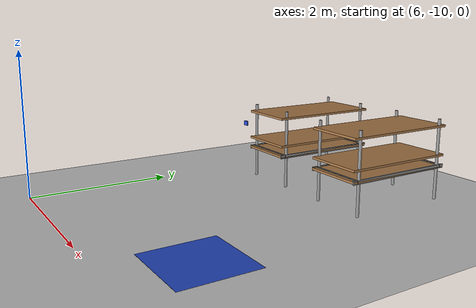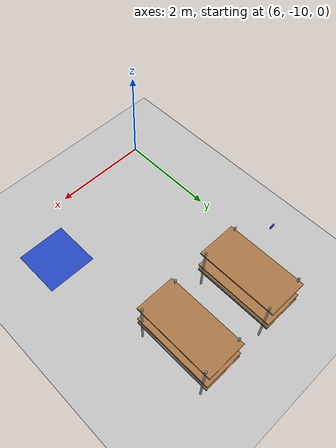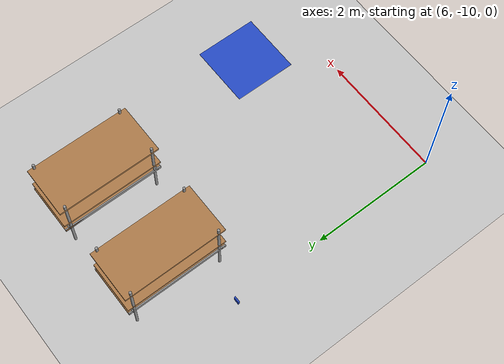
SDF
<sdf version="1.7">
 <world name="warehouse_world">
  <model name="ground_plane">
   <static>1</static>
   <link name="link">
    <collision name="collision">
     <geometry><plane><normal>0 0 1</normal><size>100 100</size></plane></geometry>
     <surface>
      <contact><collide_bitmask>65535</collide_bitmask></contact>
      <friction><ode><mu>100</mu><mu2>50</mu2></ode></friction>
     </surface>
    </collision>
    <visual name="visual">
     <cast_shadows>0</cast_shadows>
     <geometry><plane><normal>0 0 1</normal><size>100 100</size></plane></geometry>
     <material>
      <script><uri>file://media/materials/scripts/gazebo.material</uri><name>Gazebo/Grey</name></script>
     </material>
    </visual>
   </link>
  </model>
  <model name="destination_3">
   <link name="link">
    <inertial>
     <mass>0.1</mass>
     <inertia>
      <ixx>0.166667</ixx>
      <ixy>0</ixy>
      <ixz>0</ixz>
      <iyy>0.166667</iyy>
      <iyz>0</iyz>
      <izz>0.166667</izz>
     </inertia>
    </inertial>
    <visual name="visual">
     <geometry><box><size>1 1 0.001</size></box></geometry>
     <material>
      <script><name>Gazebo/Blue</name><uri>file://media/materials/scripts/gazebo.material</uri></script>
      <shader type="vertex"><normal_map>__default__</normal_map></shader>
     </material>
    </visual>
    <collision name="collision">
     <geometry><box><size>1 1 0</size></box></geometry>
     <surface>
      <friction>
       <ode><mu>0.998</mu><mu2>0.998</mu2><fdir1>0 0 0</fdir1><slip1>0</slip1><slip2>0</slip2></ode>
      </friction>
      <bounce><restitution_coefficient>0</restitution_coefficient><threshold>100000</threshold></bounce>
      <contact>
       <ode>
        <soft_cfm>0</soft_cfm>
        <soft_erp>0.2</soft_erp>
        <kp>100000</kp>
        <kd>1</kd>
        <max_vel>100</max_vel>
        <min_depth>0.001</min_depth>
       </ode>
      </contact>
     </surface>
    </collision>
   </link>
   <static>1</static>
   <pose>9 -9 0 0 -0 0</pose>
  </model>
  <model name="blue_2_0_left">
   <link name="link">
    <inertial>
     <mass>0.1</mass>
     <inertia><ixx>0.16667</ixx><ixy>0</ixy><ixz>0</ixz><iyy>0.16667</iyy><iyz>0</iyz><izz>0.16667</izz></inertia>
    </inertial>
    <visual name="visual">
     <geometry><box><size>0.09433 0.024 0.07</size></box></geometry>
     <material>
      <script><name>Gazebo/Blue</name><uri>file://media/materials/scripts/gazebo.material</uri></script>
      <shader type="vertex"><normal_map>__default__</normal_map></shader>
     </material>
    </visual>
    <collision name="collision">
     <max_contacts>50</max_contacts>
     <geometry><box><size>0.09433 0.024 0.07</size></box></geometry>
     <surface>
      <friction>
       <ode><mu>0.998</mu><mu2>0.998</mu2><fdir1>0 0 0</fdir1><slip1>0</slip1><slip2>0</slip2></ode>
      </friction>
      <bounce><restitution_coefficient>0</restitution_coefficient><threshold>100000</threshold></bounce>
      <contact>
       <ode>
        <soft_cfm>0</soft_cfm>
        <soft_erp>0.2</soft_erp>
        <kp>100000</kp>
        <kd>1</kd>
        <max_vel>100</max_vel>
        <min_depth>0.001</min_depth>
       </ode>
      </contact>
     </surface>
    </collision>
   </link>
   <static>0</static>
   <allow_auto_disable>0</allow_auto_disable>
   <pose>5.84 -6.4 0.648998 0 -0 0</pose>
  </model>
  <model name="pallet_set2_clone_1">
   <pose>7 -6 0 0 -0 0</pose>
   <frame name="warehouse_pallet::__model__" attached_to="warehouse_pallet::warehouse_pallet::link">
    <pose relative_to="__model__">0 0 0 0 -0 0</pose>
   </frame>
   <link name="warehouse_pallet::warehouse_pallet::link">
    <pose relative_to="warehouse_pallet::__model__">0 0 -0 0 -0 1.57</pose>
    <inertial>
     <inertia>
      <ixx>0.0267042</ixx>
      <ixy>0</ixy>
      <ixz>0</ixz>
      <iyy>0.0937875</iyy>
      <iyz>0</iyz>
      <izz>0.120417</izz>
     </inertia>
     <mass>0.1</mass>
    </inertial>
    <visual name="holding1_visual">
     <pose>0 0.39 0.45 0 -0 0</pose>
     <geometry><box><size>1.6 0.02 0.05</size></box></geometry>
     <material>
      <script><uri>file://media/materials/scripts/gazebo.material</uri><name>Gazebo/Grey</name></script>
      <shader type="pixel"><normal_map>__default__</normal_map></shader>
      <ambient>0.3 0.3 0.3 1</ambient>
      <diffuse>0.7 0.7 0.7 1</diffuse>
      <specular>0.01 0.01 0.01 1</specular>
      <emissive>0 0 0 1</emissive>
     </material>
    </visual>
    <visual name="front_left_leg">
     <pose>0.7 0.38 0.5 0 -0 0</pose>
     <geometry><cylinder><radius>0.02</radius><length>1.2</length></cylinder></geometry>
     <material>
      <script><uri>file://media/materials/scripts/gazebo.material</uri><name>Gazebo/Grey</name></script>
      <shader type="pixel"><normal_map>__default__</normal_map></shader>
      <ambient>0.3 0.3 0.3 1</ambient>
      <diffuse>0.7 0.7 0.7 1</diffuse>
      <specular>0.01 0.01 0.01 1</specular>
      <emissive>0 0 0 1</emissive>
     </material>
    </visual>
    <visual name="front_right_leg">
     <pose>0.7 -0.38 0.5 0 -0 0</pose>
     <geometry><cylinder><radius>0.02</radius><length>1.2</length></cylinder></geometry>
     <material>
      <script><uri>file://media/materials/scripts/gazebo.material</uri><name>Gazebo/Grey</name></script>
      <shader type="pixel"><normal_map>__default__</normal_map></shader>
      <ambient>0.3 0.3 0.3 1</ambient>
      <diffuse>0.7 0.7 0.7 1</diffuse>
      <specular>0.01 0.01 0.01 1</specular>
      <emissive>0 0 0 1</emissive>
     </material>
    </visual>
    <visual name="back_right_leg">
     <pose>-0.7 -0.38 0.5 0 -0 0</pose>
     <geometry><cylinder><radius>0.02</radius><length>1.2</length></cylinder></geometry>
     <material>
      <script><uri>file://media/materials/scripts/gazebo.material</uri><name>Gazebo/Grey</name></script>
      <shader type="pixel"><normal_map>__default__</normal_map></shader>
      <ambient>0.3 0.3 0.3 1</ambient>
      <diffuse>0.7 0.7 0.7 1</diffuse>
      <specular>0.01 0.01 0.01 1</specular>
      <emissive>0 0 0 1</emissive>
     </material>
    </visual>
    <visual name="back_left_leg">
     <pose>-0.7 0.38 0.5 0 -0 0</pose>
     <geometry><cylinder><radius>0.02</radius><length>1.2</length></cylinder></geometry>
     <material>
      <script><uri>file://media/materials/scripts/gazebo.material</uri><name>Gazebo/Grey</name></script>
      <shader type="pixel"><normal_map>__default__</normal_map></shader>
      <ambient>0.3 0.3 0.3 1</ambient>
      <diffuse>0.7 0.7 0.7 1</diffuse>
      <specular>0.01 0.01 0.01 1</specular>
      <emissive>0 0 0 1</emissive>
     </material>
    </visual>
    <visual name="visual1">
     <pose>0 0 0.45 0 -0 0</pose>
     <geometry><box><size>1.6 0.8 0.03</size></box></geometry>
     <material>
      <script><uri>file://media/materials/scripts/gazebo.material</uri><name>Gazebo/Wood</name></script>
      <shader type="pixel"><normal_map>__default__</normal_map></shader>
      <ambient>1 1 1 1</ambient>
      <diffuse>1 1 1 1</diffuse>
      <specular>0.2 0.2 0.2 1</specular>
      <emissive>0 0 0 1</emissive>
     </material>
    </visual>
    <visual name="holding2_visual">
     <pose>0 -0.39 0.45 0 -0 0</pose>
     <geometry><box><size>1.6 0.02 0.05</size></box></geometry>
     <material>
      <script><uri>file://media/materials/scripts/gazebo.material</uri><name>Gazebo/Grey</name></script>
      <shader type="pixel"><normal_map>__default__</normal_map></shader>
      <ambient>0.3 0.3 0.3 1</ambient>
      <diffuse>0.7 0.7 0.7 1</diffuse>
      <specular>0.01 0.01 0.01 1</specular>
      <emissive>0 0 0 1</emissive>
     </material>
    </visual>
    <visual name="holding3_visual">
     <pose>0.735 0 0.45 0 -0 1.57</pose>
     <geometry><box><size>0.8 0.02 0.05</size></box></geometry>
     <material>
      <script><uri>file://media/materials/scripts/gazebo.material</uri><name>Gazebo/Grey</name></script>
      <shader type="pixel"><normal_map>__default__</normal_map></shader>
      <ambient>0.3 0.3 0.3 1</ambient>
      <diffuse>0.7 0.7 0.7 1</diffuse>
      <specular>0.01 0.01 0.01 1</specular>
      <emissive>0 0 0 1</emissive>
     </material>
    </visual>
    <visual name="holding4_visual">
     <pose>-0.735 0 0.45 0 -0 1.57</pose>
     <geometry><box><size>0.8 0.02 0.05</size></box></geometry>
     <material>
      <script><uri>file://media/materials/scripts/gazebo.material</uri><name>Gazebo/Grey</name></script>
      <shader type="pixel"><normal_map>__default__</normal_map></shader>
      <ambient>0.3 0.3 0.3 1</ambient>
      <diffuse>0.7 0.7 0.7 1</diffuse>
      <specular>0.01 0.01 0.01 1</specular>
      <emissive>0 0 0 1</emissive>
     </material>
    </visual>
    <visual name="visual2">
     <pose>0 0 0.6 0 -0 0</pose>
     <geometry><box><size>1.6 0.8 0.03</size></box></geometry>
     <material>
      <script><uri>file://media/materials/scripts/gazebo.material</uri><name>Gazebo/Wood</name></script>
      <shader type="pixel"><normal_map>__default__</normal_map></shader>
      <ambient>1 1 1 1</ambient>
      <diffuse>1 1 1 1</diffuse>
      <specular>0.2 0.2 0.2 1</specular>
      <emissive>0 0 0 1</emissive>
     </material>
    </visual>
    <visual name="visual3">
     <pose>0 0 1 0 -0 0</pose>
     <geometry><box><size>1.6 0.8 0.03</size></box></geometry>
     <material>
      <script><uri>file://media/materials/scripts/gazebo.material</uri><name>Gazebo/Wood</name></script>
      <shader type="pixel"><normal_map>__default__</normal_map></shader>
      <ambient>1 1 1 1</ambient>
      <diffuse>1 1 1 1</diffuse>
      <specular>0.2 0.2 0.2 1</specular>
      <emissive>0 0 0 1</emissive>
     </material>
    </visual>
    <collision name="surface1">
     <pose>0 0 0.45 0 -0 0</pose>
     <geometry><box><size>1.6 0.8 0.03</size></box></geometry>
     <surface>
      <friction>
       <ode><mu>20</mu><mu2>20</mu2><fdir1>0 0 0</fdir1><slip1>0</slip1><slip2>0</slip2></ode>
       <torsional>
        <coefficient>1</coefficient>
        <patch_radius>0</patch_radius>
        <surface_radius>0</surface_radius>
        <use_patch_radius>1</use_patch_radius>
        <ode><slip>0</slip></ode>
       </torsional>
      </friction>
      <bounce><restitution_coefficient>0</restitution_coefficient><threshold>1e+06</threshold></bounce>
      <contact>
       <collide_without_contact>0</collide_without_contact>
       <collide_without_contact_bitmask>1</collide_without_contact_bitmask>
       <collide_bitmask>1</collide_bitmask>
       <ode>
        <soft_cfm>0</soft_cfm>
        <soft_erp>0.2</soft_erp>
        <kp>1e+13</kp>
        <kd>1</kd>
        <max_vel>0.01</max_vel>
        <min_depth>0</min_depth>
       </ode>
       <bullet>
        <split_impulse>1</split_impulse>
        <split_impulse_penetration_threshold>-0.01</split_impulse_penetration_threshold>
        <soft_cfm>0</soft_cfm>
        <soft_erp>0.2</soft_erp>
        <kp>1e+13</kp>
        <kd>1</kd>
       </bullet>
      </contact>
     </surface>
    </collision>
    <collision name="holding1_collision">
     <pose>0 0.39 0.45 0 -0 0</pose>
     <geometry><box><size>1.6 0.02 0.05</size></box></geometry>
     <surface>
      <friction>
       <ode><mu>1e+09</mu><mu2>1e+09</mu2><fdir1>0 0 0</fdir1><slip1>0</slip1><slip2>0</slip2></ode>
       <torsional>
        <coefficient>1</coefficient>
        <patch_radius>0</patch_radius>
        <surface_radius>0</surface_radius>
        <use_patch_radius>1</use_patch_radius>
        <ode><slip>0</slip></ode>
       </torsional>
      </friction>
      <bounce><restitution_coefficient>0</restitution_coefficient><threshold>1e+06</threshold></bounce>
      <contact>
       <collide_without_contact>0</collide_without_contact>
       <collide_without_contact_bitmask>1</collide_without_contact_bitmask>
       <collide_bitmask>1</collide_bitmask>
       <ode>
        <soft_cfm>0</soft_cfm>
        <soft_erp>0.2</soft_erp>
        <kp>1e+13</kp>
        <kd>1</kd>
        <max_vel>0.01</max_vel>
        <min_depth>0</min_depth>
       </ode>
       <bullet>
        <split_impulse>1</split_impulse>
        <split_impulse_penetration_threshold>-0.01</split_impulse_penetration_threshold>
        <soft_cfm>0</soft_cfm>
        <soft_erp>0.2</soft_erp>
        <kp>1e+13</kp>
        <kd>1</kd>
       </bullet>
      </contact>
     </surface>
    </collision>
    <collision name="holding2_collision">
     <pose>0 -0.39 0.45 0 -0 0</pose>
     <geometry><box><size>1.6 0.02 0.05</size></box></geometry>
     <surface>
      <friction>
       <ode><mu>1e+09</mu><mu2>1e+09</mu2><fdir1>0 0 0</fdir1><slip1>0</slip1><slip2>0</slip2></ode>
       <torsional>
        <coefficient>1</coefficient>
        <patch_radius>0</patch_radius>
        <surface_radius>0</surface_radius>
        <use_patch_radius>1</use_patch_radius>
        <ode><slip>0</slip></ode>
       </torsional>
      </friction>
      <bounce><restitution_coefficient>0</restitution_coefficient><threshold>1e+06</threshold></bounce>
      <contact>
       <collide_without_contact>0</collide_without_contact>
       <collide_without_contact_bitmask>1</collide_without_contact_bitmask>
       <collide_bitmask>1</collide_bitmask>
       <ode>
        <soft_cfm>0</soft_cfm>
        <soft_erp>0.2</soft_erp>
        <kp>1e+13</kp>
        <kd>1</kd>
        <max_vel>0.01</max_vel>
        <min_depth>0</min_depth>
       </ode>
       <bullet>
        <split_impulse>1</split_impulse>
        <split_impulse_penetration_threshold>-0.01</split_impulse_penetration_threshold>
        <soft_cfm>0</soft_cfm>
        <soft_erp>0.2</soft_erp>
        <kp>1e+13</kp>
        <kd>1</kd>
       </bullet>
      </contact>
     </surface>
    </collision>
    <collision name="holding3_collision">
     <pose>0.735 0 0.45 0 -0 1.57</pose>
     <geometry><box><size>0.8 0.02 0.05</size></box></geometry>
     <surface>
      <friction>
       <ode><mu>1e+09</mu><mu2>1e+09</mu2><fdir1>0 0 0</fdir1><slip1>0</slip1><slip2>0</slip2></ode>
       <torsional>
        <coefficient>1</coefficient>
        <patch_radius>0</patch_radius>
        <surface_radius>0</surface_radius>
        <use_patch_radius>1</use_patch_radius>
        <ode><slip>0</slip></ode>
       </torsional>
      </friction>
      <bounce><restitution_coefficient>0</restitution_coefficient><threshold>1e+06</threshold></bounce>
      <contact>
       <collide_without_contact>0</collide_without_contact>
       <collide_without_contact_bitmask>1</collide_without_contact_bitmask>
       <collide_bitmask>1</collide_bitmask>
       <ode>
        <soft_cfm>0</soft_cfm>
        <soft_erp>0.2</soft_erp>
        <kp>1e+13</kp>
        <kd>1</kd>
        <max_vel>0.01</max_vel>
        <min_depth>0</min_depth>
       </ode>
       <bullet>
        <split_impulse>1</split_impulse>
        <split_impulse_penetration_threshold>-0.01</split_impulse_penetration_threshold>
        <soft_cfm>0</soft_cfm>
        <soft_erp>0.2</soft_erp>
        <kp>1e+13</kp>
        <kd>1</kd>
       </bullet>
      </contact>
     </surface>
    </collision>
    <collision name="holding4_collision">
     <pose>-0.735 0 0.45 0 -0 1.57</pose>
     <geometry><box><size>0.8 0.02 0.05</size></box></geometry>
     <surface>
      <friction>
       <ode><mu>1e+09</mu><mu2>1e+09</mu2><fdir1>0 0 0</fdir1><slip1>0</slip1><slip2>0</slip2></ode>
       <torsional>
        <coefficient>1</coefficient>
        <patch_radius>0</patch_radius>
        <surface_radius>0</surface_radius>
        <use_patch_radius>1</use_patch_radius>
        <ode><slip>0</slip></ode>
       </torsional>
      </friction>
      <bounce><restitution_coefficient>0</restitution_coefficient><threshold>1e+06</threshold></bounce>
      <contact>
       <collide_without_contact>0</collide_without_contact>
       <collide_without_contact_bitmask>1</collide_without_contact_bitmask>
       <collide_bitmask>1</collide_bitmask>
       <ode>
        <soft_cfm>0</soft_cfm>
        <soft_erp>0.2</soft_erp>
        <kp>1e+13</kp>
        <kd>1</kd>
        <max_vel>0.01</max_vel>
        <min_depth>0</min_depth>
       </ode>
       <bullet>
        <split_impulse>1</split_impulse>
        <split_impulse_penetration_threshold>-0.01</split_impulse_penetration_threshold>
        <soft_cfm>0</soft_cfm>
        <soft_erp>0.2</soft_erp>
        <kp>1e+13</kp>
        <kd>1</kd>
       </bullet>
      </contact>
     </surface>
    </collision>
    <collision name="surface3">
     <pose>0 0 1 0 -0 0</pose>
     <geometry><box><size>1.6 0.8 0.03</size></box></geometry>
     <surface>
      <friction>
       <ode><mu>2.5</mu><mu2>2.5</mu2><fdir1>0 0 0</fdir1><slip1>0</slip1><slip2>0</slip2></ode>
       <torsional>
        <coefficient>1</coefficient>
        <patch_radius>0</patch_radius>
        <surface_radius>0</surface_radius>
        <use_patch_radius>1</use_patch_radius>
        <ode><slip>0</slip></ode>
       </torsional>
      </friction>
      <bounce><restitution_coefficient>0</restitution_coefficient><threshold>1e+06</threshold></bounce>
      <contact>
       <collide_without_contact>0</collide_without_contact>
       <collide_without_contact_bitmask>1</collide_without_contact_bitmask>
       <collide_bitmask>1</collide_bitmask>
       <ode>
        <soft_cfm>0</soft_cfm>
        <soft_erp>0.2</soft_erp>
        <kp>1e+13</kp>
        <kd>1</kd>
        <max_vel>0.01</max_vel>
        <min_depth>0</min_depth>
       </ode>
       <bullet>
        <split_impulse>1</split_impulse>
        <split_impulse_penetration_threshold>-0.01</split_impulse_penetration_threshold>
        <soft_cfm>0</soft_cfm>
        <soft_erp>0.2</soft_erp>
        <kp>1e+13</kp>
        <kd>1</kd>
       </bullet>
      </contact>
     </surface>
    </collision>
    <collision name="surface2">
     <pose>0 0 0.6 0 -0 0</pose>
     <geometry><box><size>1.6 0.8 0.03</size></box></geometry>
     <surface>
      <friction>
       <ode><mu>2.5</mu><mu2>2.5</mu2><fdir1>0 0 0</fdir1><slip1>0</slip1><slip2>0</slip2></ode>
       <torsional>
        <coefficient>1</coefficient>
        <patch_radius>0</patch_radius>
        <surface_radius>0</surface_radius>
        <use_patch_radius>1</use_patch_radius>
        <ode><slip>0</slip></ode>
       </torsional>
      </friction>
      <bounce><restitution_coefficient>0</restitution_coefficient><threshold>1e+06</threshold></bounce>
      <contact>
       <collide_without_contact>0</collide_without_contact>
       <collide_without_contact_bitmask>1</collide_without_contact_bitmask>
       <collide_bitmask>1</collide_bitmask>
       <ode>
        <soft_cfm>0</soft_cfm>
        <soft_erp>0.2</soft_erp>
        <kp>1e+13</kp>
        <kd>1</kd>
        <max_vel>0.01</max_vel>
        <min_depth>0</min_depth>
       </ode>
       <bullet>
        <split_impulse>1</split_impulse>
        <split_impulse_penetration_threshold>-0.01</split_impulse_penetration_threshold>
        <soft_cfm>0</soft_cfm>
        <soft_erp>0.2</soft_erp>
        <kp>1e+13</kp>
        <kd>1</kd>
       </bullet>
      </contact>
     </surface>
    </collision>
    <collision name="front_right_leg">
     <pose>0.7 -0.38 0.5 0 -0 0</pose>
     <geometry><cylinder><radius>0.02</radius><length>1</length></cylinder></geometry>
     <surface>
      <friction>
       <ode><mu>0.1</mu><mu2>0.1</mu2><fdir1>0 0 0</fdir1><slip1>0</slip1><slip2>0</slip2></ode>
       <torsional>
        <coefficient>1</coefficient>
        <patch_radius>0</patch_radius>
        <surface_radius>0</surface_radius>
        <use_patch_radius>1</use_patch_radius>
        <ode><slip>0</slip></ode>
       </torsional>
      </friction>
      <bounce><restitution_coefficient>0</restitution_coefficient><threshold>1e+06</threshold></bounce>
      <contact>
       <collide_without_contact>0</collide_without_contact>
       <collide_without_contact_bitmask>1</collide_without_contact_bitmask>
       <collide_bitmask>1</collide_bitmask>
       <ode>
        <soft_cfm>0</soft_cfm>
        <soft_erp>0.2</soft_erp>
        <kp>1e+13</kp>
        <kd>1</kd>
        <max_vel>0.01</max_vel>
        <min_depth>0</min_depth>
       </ode>
       <bullet>
        <split_impulse>1</split_impulse>
        <split_impulse_penetration_threshold>-0.01</split_impulse_penetration_threshold>
        <soft_cfm>0</soft_cfm>
        <soft_erp>0.2</soft_erp>
        <kp>1e+13</kp>
        <kd>1</kd>
       </bullet>
      </contact>
     </surface>
    </collision>
    <collision name="back_right_leg">
     <pose>-0.7 -0.38 0.5 0 -0 0</pose>
     <geometry><cylinder><radius>0.02</radius><length>1.2</length></cylinder></geometry>
     <surface>
      <friction>
       <ode><mu>0.1</mu><mu2>0.1</mu2><fdir1>0 0 0</fdir1><slip1>0</slip1><slip2>0</slip2></ode>
       <torsional>
        <coefficient>1</coefficient>
        <patch_radius>0</patch_radius>
        <surface_radius>0</surface_radius>
        <use_patch_radius>1</use_patch_radius>
        <ode><slip>0</slip></ode>
       </torsional>
      </friction>
      <bounce><restitution_coefficient>0</restitution_coefficient><threshold>1e+06</threshold></bounce>
      <contact>
       <collide_without_contact>0</collide_without_contact>
       <collide_without_contact_bitmask>1</collide_without_contact_bitmask>
       <collide_bitmask>1</collide_bitmask>
       <ode>
        <soft_cfm>0</soft_cfm>
        <soft_erp>0.2</soft_erp>
        <kp>1e+13</kp>
        <kd>1</kd>
        <max_vel>0.01</max_vel>
        <min_depth>0</min_depth>
       </ode>
       <bullet>
        <split_impulse>1</split_impulse>
        <split_impulse_penetration_threshold>-0.01</split_impulse_penetration_threshold>
        <soft_cfm>0</soft_cfm>
        <soft_erp>0.2</soft_erp>
        <kp>1e+13</kp>
        <kd>1</kd>
       </bullet>
      </contact>
     </surface>
    </collision>
    <collision name="front_left_leg">
     <pose>0.7 0.38 0.5 0 -0 0</pose>
     <geometry><cylinder><radius>0.02</radius><length>1.2</length></cylinder></geometry>
     <surface>
      <friction>
       <ode><mu>0.1</mu><mu2>0.1</mu2><fdir1>0 0 0</fdir1><slip1>0</slip1><slip2>0</slip2></ode>
       <torsional>
        <coefficient>1</coefficient>
        <patch_radius>0</patch_radius>
        <surface_radius>0</surface_radius>
        <use_patch_radius>1</use_patch_radius>
        <ode><slip>0</slip></ode>
       </torsional>
      </friction>
      <bounce><restitution_coefficient>0</restitution_coefficient><threshold>1e+06</threshold></bounce>
      <contact>
       <collide_without_contact>0</collide_without_contact>
       <collide_without_contact_bitmask>1</collide_without_contact_bitmask>
       <collide_bitmask>1</collide_bitmask>
       <ode>
        <soft_cfm>0</soft_cfm>
        <soft_erp>0.2</soft_erp>
        <kp>1e+13</kp>
        <kd>1</kd>
        <max_vel>0.01</max_vel>
        <min_depth>0</min_depth>
       </ode>
       <bullet>
        <split_impulse>1</split_impulse>
        <split_impulse_penetration_threshold>-0.01</split_impulse_penetration_threshold>
        <soft_cfm>0</soft_cfm>
        <soft_erp>0.2</soft_erp>
        <kp>1e+13</kp>
        <kd>1</kd>
       </bullet>
      </contact>
     </surface>
    </collision>
    <collision name="back_left_leg">
     <pose>-0.7 0.38 0.5 0 -0 0</pose>
     <geometry><cylinder><radius>0.02</radius><length>1.2</length></cylinder></geometry>
     <surface>
      <friction>
       <ode><mu>0.1</mu><mu2>0.1</mu2><fdir1>0 0 0</fdir1><slip1>0</slip1><slip2>0</slip2></ode>
       <torsional>
        <coefficient>1</coefficient>
        <patch_radius>0</patch_radius>
        <surface_radius>0</surface_radius>
        <use_patch_radius>1</use_patch_radius>
        <ode><slip>0</slip></ode>
       </torsional>
      </friction>
      <bounce><restitution_coefficient>0</restitution_coefficient><threshold>1e+06</threshold></bounce>
      <contact>
       <collide_without_contact>0</collide_without_contact>
       <collide_without_contact_bitmask>1</collide_without_contact_bitmask>
       <collide_bitmask>1</collide_bitmask>
       <ode>
        <soft_cfm>0</soft_cfm>
        <soft_erp>0.2</soft_erp>
        <kp>1e+13</kp>
        <kd>1</kd>
        <max_vel>0.01</max_vel>
        <min_depth>0</min_depth>
       </ode>
       <bullet>
        <split_impulse>1</split_impulse>
        <split_impulse_penetration_threshold>-0.01</split_impulse_penetration_threshold>
        <soft_cfm>0</soft_cfm>
        <soft_erp>0.2</soft_erp>
        <kp>1e+13</kp>
        <kd>1</kd>
       </bullet>
      </contact>
     </surface>
    </collision>
   </link>
   <static>1</static>
  </model>
  <model name="pallet_set2_clone_2">
   <pose>8.5 -6 0 0 -0 0</pose>
   <frame name="warehouse_pallet::__model__" attached_to="warehouse_pallet::warehouse_pallet::link">
    <pose relative_to="__model__">0 0 0 0 -0 0</pose>
   </frame>
   <link name="warehouse_pallet::warehouse_pallet::link">
    <pose relative_to="warehouse_pallet::__model__">0 0 -0 0 -0 1.57</pose>
    <inertial>
     <inertia>
      <ixx>0.0267042</ixx>
      <ixy>0</ixy>
      <ixz>0</ixz>
      <iyy>0.0937875</iyy>
      <iyz>0</iyz>
      <izz>0.120417</izz>
     </inertia>
     <mass>0.1</mass>
    </inertial>
    <visual name="holding1_visual">
     <pose>0 0.39 0.45 0 -0 0</pose>
     <geometry><box><size>1.6 0.02 0.05</size></box></geometry>
     <material>
      <script><uri>file://media/materials/scripts/gazebo.material</uri><name>Gazebo/Grey</name></script>
      <shader type="pixel"><normal_map>__default__</normal_map></shader>
      <ambient>0.3 0.3 0.3 1</ambient>
      <diffuse>0.7 0.7 0.7 1</diffuse>
      <specular>0.01 0.01 0.01 1</specular>
      <emissive>0 0 0 1</emissive>
     </material>
    </visual>
    <visual name="front_left_leg">
     <pose>0.7 0.38 0.5 0 -0 0</pose>
     <geometry><cylinder><radius>0.02</radius><length>1.2</length></cylinder></geometry>
     <material>
      <script><uri>file://media/materials/scripts/gazebo.material</uri><name>Gazebo/Grey</name></script>
      <shader type="pixel"><normal_map>__default__</normal_map></shader>
      <ambient>0.3 0.3 0.3 1</ambient>
      <diffuse>0.7 0.7 0.7 1</diffuse>
      <specular>0.01 0.01 0.01 1</specular>
      <emissive>0 0 0 1</emissive>
     </material>
    </visual>
    <visual name="front_right_leg">
     <pose>0.7 -0.38 0.5 0 -0 0</pose>
     <geometry><cylinder><radius>0.02</radius><length>1.2</length></cylinder></geometry>
     <material>
      <script><uri>file://media/materials/scripts/gazebo.material</uri><name>Gazebo/Grey</name></script>
      <shader type="pixel"><normal_map>__default__</normal_map></shader>
      <ambient>0.3 0.3 0.3 1</ambient>
      <diffuse>0.7 0.7 0.7 1</diffuse>
      <specular>0.01 0.01 0.01 1</specular>
      <emissive>0 0 0 1</emissive>
     </material>
    </visual>
    <visual name="back_right_leg">
     <pose>-0.7 -0.38 0.5 0 -0 0</pose>
     <geometry><cylinder><radius>0.02</radius><length>1.2</length></cylinder></geometry>
     <material>
      <script><uri>file://media/materials/scripts/gazebo.material</uri><name>Gazebo/Grey</name></script>
      <shader type="pixel"><normal_map>__default__</normal_map></shader>
      <ambient>0.3 0.3 0.3 1</ambient>
      <diffuse>0.7 0.7 0.7 1</diffuse>
      <specular>0.01 0.01 0.01 1</specular>
      <emissive>0 0 0 1</emissive>
     </material>
    </visual>
    <visual name="back_left_leg">
     <pose>-0.7 0.38 0.5 0 -0 0</pose>
     <geometry><cylinder><radius>0.02</radius><length>1.2</length></cylinder></geometry>
     <material>
      <script><uri>file://media/materials/scripts/gazebo.material</uri><name>Gazebo/Grey</name></script>
      <shader type="pixel"><normal_map>__default__</normal_map></shader>
      <ambient>0.3 0.3 0.3 1</ambient>
      <diffuse>0.7 0.7 0.7 1</diffuse>
      <specular>0.01 0.01 0.01 1</specular>
      <emissive>0 0 0 1</emissive>
     </material>
    </visual>
    <visual name="visual1">
     <pose>0 0 0.45 0 -0 0</pose>
     <geometry><box><size>1.6 0.8 0.03</size></box></geometry>
     <material>
      <script><uri>file://media/materials/scripts/gazebo.material</uri><name>Gazebo/Wood</name></script>
      <shader type="pixel"><normal_map>__default__</normal_map></shader>
      <ambient>1 1 1 1</ambient>
      <diffuse>1 1 1 1</diffuse>
      <specular>0.2 0.2 0.2 1</specular>
      <emissive>0 0 0 1</emissive>
     </material>
    </visual>
    <visual name="holding2_visual">
     <pose>0 -0.39 0.45 0 -0 0</pose>
     <geometry><box><size>1.6 0.02 0.05</size></box></geometry>
     <material>
      <script><uri>file://media/materials/scripts/gazebo.material</uri><name>Gazebo/Grey</name></script>
      <shader type="pixel"><normal_map>__default__</normal_map></shader>
      <ambient>0.3 0.3 0.3 1</ambient>
      <diffuse>0.7 0.7 0.7 1</diffuse>
      <specular>0.01 0.01 0.01 1</specular>
      <emissive>0 0 0 1</emissive>
     </material>
    </visual>
    <visual name="holding3_visual">
     <pose>0.735 0 0.45 0 -0 1.57</pose>
     <geometry><box><size>0.8 0.02 0.05</size></box></geometry>
     <material>
      <script><uri>file://media/materials/scripts/gazebo.material</uri><name>Gazebo/Grey</name></script>
      <shader type="pixel"><normal_map>__default__</normal_map></shader>
      <ambient>0.3 0.3 0.3 1</ambient>
      <diffuse>0.7 0.7 0.7 1</diffuse>
      <specular>0.01 0.01 0.01 1</specular>
      <emissive>0 0 0 1</emissive>
     </material>
    </visual>
    <visual name="holding4_visual">
     <pose>-0.735 0 0.45 0 -0 1.57</pose>
     <geometry><box><size>0.8 0.02 0.05</size></box></geometry>
     <material>
      <script><uri>file://media/materials/scripts/gazebo.material</uri><name>Gazebo/Grey</name></script>
      <shader type="pixel"><normal_map>__default__</normal_map></shader>
      <ambient>0.3 0.3 0.3 1</ambient>
      <diffuse>0.7 0.7 0.7 1</diffuse>
      <specular>0.01 0.01 0.01 1</specular>
      <emissive>0 0 0 1</emissive>
     </material>
    </visual>
    <visual name="visual2">
     <pose>0 0 0.6 0 -0 0</pose>
     <geometry><box><size>1.6 0.8 0.03</size></box></geometry>
     <material>
      <script><uri>file://media/materials/scripts/gazebo.material</uri><name>Gazebo/Wood</name></script>
      <shader type="pixel"><normal_map>__default__</normal_map></shader>
      <ambient>1 1 1 1</ambient>
      <diffuse>1 1 1 1</diffuse>
      <specular>0.2 0.2 0.2 1</specular>
      <emissive>0 0 0 1</emissive>
     </material>
    </visual>
    <visual name="visual3">
     <pose>0 0 1 0 -0 0</pose>
     <geometry><box><size>1.6 0.8 0.03</size></box></geometry>
     <material>
      <script><uri>file://media/materials/scripts/gazebo.material</uri><name>Gazebo/Wood</name></script>
      <shader type="pixel"><normal_map>__default__</normal_map></shader>
      <ambient>1 1 1 1</ambient>
      <diffuse>1 1 1 1</diffuse>
      <specular>0.2 0.2 0.2 1</specular>
      <emissive>0 0 0 1</emissive>
     </material>
    </visual>
    <collision name="surface1">
     <pose>0 0 0.45 0 -0 0</pose>
     <geometry><box><size>1.6 0.8 0.03</size></box></geometry>
     <surface>
      <friction>
       <ode><mu>20</mu><mu2>20</mu2><fdir1>0 0 0</fdir1><slip1>0</slip1><slip2>0</slip2></ode>
       <torsional>
        <coefficient>1</coefficient>
        <patch_radius>0</patch_radius>
        <surface_radius>0</surface_radius>
        <use_patch_radius>1</use_patch_radius>
        <ode><slip>0</slip></ode>
       </torsional>
      </friction>
      <bounce><restitution_coefficient>0</restitution_coefficient><threshold>1e+06</threshold></bounce>
      <contact>
       <collide_without_contact>0</collide_without_contact>
       <collide_without_contact_bitmask>1</collide_without_contact_bitmask>
       <collide_bitmask>1</collide_bitmask>
       <ode>
        <soft_cfm>0</soft_cfm>
        <soft_erp>0.2</soft_erp>
        <kp>1e+13</kp>
        <kd>1</kd>
        <max_vel>0.01</max_vel>
        <min_depth>0</min_depth>
       </ode>
       <bullet>
        <split_impulse>1</split_impulse>
        <split_impulse_penetration_threshold>-0.01</split_impulse_penetration_threshold>
        <soft_cfm>0</soft_cfm>
        <soft_erp>0.2</soft_erp>
        <kp>1e+13</kp>
        <kd>1</kd>
       </bullet>
      </contact>
     </surface>
    </collision>
    <collision name="holding1_collision">
     <pose>0 0.39 0.45 0 -0 0</pose>
     <geometry><box><size>1.6 0.02 0.05</size></box></geometry>
     <surface>
      <friction>
       <ode><mu>1e+09</mu><mu2>1e+09</mu2><fdir1>0 0 0</fdir1><slip1>0</slip1><slip2>0</slip2></ode>
       <torsional>
        <coefficient>1</coefficient>
        <patch_radius>0</patch_radius>
        <surface_radius>0</surface_radius>
        <use_patch_radius>1</use_patch_radius>
        <ode><slip>0</slip></ode>
       </torsional>
      </friction>
      <bounce><restitution_coefficient>0</restitution_coefficient><threshold>1e+06</threshold></bounce>
      <contact>
       <collide_without_contact>0</collide_without_contact>
       <collide_without_contact_bitmask>1</collide_without_contact_bitmask>
       <collide_bitmask>1</collide_bitmask>
       <ode>
        <soft_cfm>0</soft_cfm>
        <soft_erp>0.2</soft_erp>
        <kp>1e+13</kp>
        <kd>1</kd>
        <max_vel>0.01</max_vel>
        <min_depth>0</min_depth>
       </ode>
       <bullet>
        <split_impulse>1</split_impulse>
        <split_impulse_penetration_threshold>-0.01</split_impulse_penetration_threshold>
        <soft_cfm>0</soft_cfm>
        <soft_erp>0.2</soft_erp>
        <kp>1e+13</kp>
        <kd>1</kd>
       </bullet>
      </contact>
     </surface>
    </collision>
    <collision name="holding2_collision">
     <pose>0 -0.39 0.45 0 -0 0</pose>
     <geometry><box><size>1.6 0.02 0.05</size></box></geometry>
     <surface>
      <friction>
       <ode><mu>1e+09</mu><mu2>1e+09</mu2><fdir1>0 0 0</fdir1><slip1>0</slip1><slip2>0</slip2></ode>
       <torsional>
        <coefficient>1</coefficient>
        <patch_radius>0</patch_radius>
        <surface_radius>0</surface_radius>
        <use_patch_radius>1</use_patch_radius>
        <ode><slip>0</slip></ode>
       </torsional>
      </friction>
      <bounce><restitution_coefficient>0</restitution_coefficient><threshold>1e+06</threshold></bounce>
      <contact>
       <collide_without_contact>0</collide_without_contact>
       <collide_without_contact_bitmask>1</collide_without_contact_bitmask>
       <collide_bitmask>1</collide_bitmask>
       <ode>
        <soft_cfm>0</soft_cfm>
        <soft_erp>0.2</soft_erp>
        <kp>1e+13</kp>
        <kd>1</kd>
        <max_vel>0.01</max_vel>
        <min_depth>0</min_depth>
       </ode>
       <bullet>
        <split_impulse>1</split_impulse>
        <split_impulse_penetration_threshold>-0.01</split_impulse_penetration_threshold>
        <soft_cfm>0</soft_cfm>
        <soft_erp>0.2</soft_erp>
        <kp>1e+13</kp>
        <kd>1</kd>
       </bullet>
      </contact>
     </surface>
    </collision>
    <collision name="holding3_collision">
     <pose>0.735 0 0.45 0 -0 1.57</pose>
     <geometry><box><size>0.8 0.02 0.05</size></box></geometry>
     <surface>
      <friction>
       <ode><mu>1e+09</mu><mu2>1e+09</mu2><fdir1>0 0 0</fdir1><slip1>0</slip1><slip2>0</slip2></ode>
       <torsional>
        <coefficient>1</coefficient>
        <patch_radius>0</patch_radius>
        <surface_radius>0</surface_radius>
        <use_patch_radius>1</use_patch_radius>
        <ode><slip>0</slip></ode>
       </torsional>
      </friction>
      <bounce><restitution_coefficient>0</restitution_coefficient><threshold>1e+06</threshold></bounce>
      <contact>
       <collide_without_contact>0</collide_without_contact>
       <collide_without_contact_bitmask>1</collide_without_contact_bitmask>
       <collide_bitmask>1</collide_bitmask>
       <ode>
        <soft_cfm>0</soft_cfm>
        <soft_erp>0.2</soft_erp>
        <kp>1e+13</kp>
        <kd>1</kd>
        <max_vel>0.01</max_vel>
        <min_depth>0</min_depth>
       </ode>
       <bullet>
        <split_impulse>1</split_impulse>
        <split_impulse_penetration_threshold>-0.01</split_impulse_penetration_threshold>
        <soft_cfm>0</soft_cfm>
        <soft_erp>0.2</soft_erp>
        <kp>1e+13</kp>
        <kd>1</kd>
       </bullet>
      </contact>
     </surface>
    </collision>
    <collision name="holding4_collision">
     <pose>-0.735 0 0.45 0 -0 1.57</pose>
     <geometry><box><size>0.8 0.02 0.05</size></box></geometry>
     <surface>
      <friction>
       <ode><mu>1e+09</mu><mu2>1e+09</mu2><fdir1>0 0 0</fdir1><slip1>0</slip1><slip2>0</slip2></ode>
       <torsional>
        <coefficient>1</coefficient>
        <patch_radius>0</patch_radius>
        <surface_radius>0</surface_radius>
        <use_patch_radius>1</use_patch_radius>
        <ode><slip>0</slip></ode>
       </torsional>
      </friction>
      <bounce><restitution_coefficient>0</restitution_coefficient><threshold>1e+06</threshold></bounce>
      <contact>
       <collide_without_contact>0</collide_without_contact>
       <collide_without_contact_bitmask>1</collide_without_contact_bitmask>
       <collide_bitmask>1</collide_bitmask>
       <ode>
        <soft_cfm>0</soft_cfm>
        <soft_erp>0.2</soft_erp>
        <kp>1e+13</kp>
        <kd>1</kd>
        <max_vel>0.01</max_vel>
        <min_depth>0</min_depth>
       </ode>
       <bullet>
        <split_impulse>1</split_impulse>
        <split_impulse_penetration_threshold>-0.01</split_impulse_penetration_threshold>
        <soft_cfm>0</soft_cfm>
        <soft_erp>0.2</soft_erp>
        <kp>1e+13</kp>
        <kd>1</kd>
       </bullet>
      </contact>
     </surface>
    </collision>
    <collision name="surface3">
     <pose>0 0 1 0 -0 0</pose>
     <geometry><box><size>1.6 0.8 0.03</size></box></geometry>
     <surface>
      <friction>
       <ode><mu>2.5</mu><mu2>2.5</mu2><fdir1>0 0 0</fdir1><slip1>0</slip1><slip2>0</slip2></ode>
       <torsional>
        <coefficient>1</coefficient>
        <patch_radius>0</patch_radius>
        <surface_radius>0</surface_radius>
        <use_patch_radius>1</use_patch_radius>
        <ode><slip>0</slip></ode>
       </torsional>
      </friction>
      <bounce><restitution_coefficient>0</restitution_coefficient><threshold>1e+06</threshold></bounce>
      <contact>
       <collide_without_contact>0</collide_without_contact>
       <collide_without_contact_bitmask>1</collide_without_contact_bitmask>
       <collide_bitmask>1</collide_bitmask>
       <ode>
        <soft_cfm>0</soft_cfm>
        <soft_erp>0.2</soft_erp>
        <kp>1e+13</kp>
        <kd>1</kd>
        <max_vel>0.01</max_vel>
        <min_depth>0</min_depth>
       </ode>
       <bullet>
        <split_impulse>1</split_impulse>
        <split_impulse_penetration_threshold>-0.01</split_impulse_penetration_threshold>
        <soft_cfm>0</soft_cfm>
        <soft_erp>0.2</soft_erp>
        <kp>1e+13</kp>
        <kd>1</kd>
       </bullet>
      </contact>
     </surface>
    </collision>
    <collision name="surface2">
     <pose>0 0 0.6 0 -0 0</pose>
     <geometry><box><size>1.6 0.8 0.03</size></box></geometry>
     <surface>
      <friction>
       <ode><mu>2.5</mu><mu2>2.5</mu2><fdir1>0 0 0</fdir1><slip1>0</slip1><slip2>0</slip2></ode>
       <torsional>
        <coefficient>1</coefficient>
        <patch_radius>0</patch_radius>
        <surface_radius>0</surface_radius>
        <use_patch_radius>1</use_patch_radius>
        <ode><slip>0</slip></ode>
       </torsional>
      </friction>
      <bounce><restitution_coefficient>0</restitution_coefficient><threshold>1e+06</threshold></bounce>
      <contact>
       <collide_without_contact>0</collide_without_contact>
       <collide_without_contact_bitmask>1</collide_without_contact_bitmask>
       <collide_bitmask>1</collide_bitmask>
       <ode>
        <soft_cfm>0</soft_cfm>
        <soft_erp>0.2</soft_erp>
        <kp>1e+13</kp>
        <kd>1</kd>
        <max_vel>0.01</max_vel>
        <min_depth>0</min_depth>
       </ode>
       <bullet>
        <split_impulse>1</split_impulse>
        <split_impulse_penetration_threshold>-0.01</split_impulse_penetration_threshold>
        <soft_cfm>0</soft_cfm>
        <soft_erp>0.2</soft_erp>
        <kp>1e+13</kp>
        <kd>1</kd>
       </bullet>
      </contact>
     </surface>
    </collision>
    <collision name="front_right_leg">
     <pose>0.7 -0.38 0.5 0 -0 0</pose>
     <geometry><cylinder><radius>0.02</radius><length>1</length></cylinder></geometry>
     <surface>
      <friction>
       <ode><mu>0.1</mu><mu2>0.1</mu2><fdir1>0 0 0</fdir1><slip1>0</slip1><slip2>0</slip2></ode>
       <torsional>
        <coefficient>1</coefficient>
        <patch_radius>0</patch_radius>
        <surface_radius>0</surface_radius>
        <use_patch_radius>1</use_patch_radius>
        <ode><slip>0</slip></ode>
       </torsional>
      </friction>
      <bounce><restitution_coefficient>0</restitution_coefficient><threshold>1e+06</threshold></bounce>
      <contact>
       <collide_without_contact>0</collide_without_contact>
       <collide_without_contact_bitmask>1</collide_without_contact_bitmask>
       <collide_bitmask>1</collide_bitmask>
       <ode>
        <soft_cfm>0</soft_cfm>
        <soft_erp>0.2</soft_erp>
        <kp>1e+13</kp>
        <kd>1</kd>
        <max_vel>0.01</max_vel>
        <min_depth>0</min_depth>
       </ode>
       <bullet>
        <split_impulse>1</split_impulse>
        <split_impulse_penetration_threshold>-0.01</split_impulse_penetration_threshold>
        <soft_cfm>0</soft_cfm>
        <soft_erp>0.2</soft_erp>
        <kp>1e+13</kp>
        <kd>1</kd>
       </bullet>
      </contact>
     </surface>
    </collision>
    <collision name="back_right_leg">
     <pose>-0.7 -0.38 0.5 0 -0 0</pose>
     <geometry><cylinder><radius>0.02</radius><length>1.2</length></cylinder></geometry>
     <surface>
      <friction>
       <ode><mu>0.1</mu><mu2>0.1</mu2><fdir1>0 0 0</fdir1><slip1>0</slip1><slip2>0</slip2></ode>
       <torsional>
        <coefficient>1</coefficient>
        <patch_radius>0</patch_radius>
        <surface_radius>0</surface_radius>
        <use_patch_radius>1</use_patch_radius>
        <ode><slip>0</slip></ode>
       </torsional>
      </friction>
      <bounce><restitution_coefficient>0</restitution_coefficient><threshold>1e+06</threshold></bounce>
      <contact>
       <collide_without_contact>0</collide_without_contact>
       <collide_without_contact_bitmask>1</collide_without_contact_bitmask>
       <collide_bitmask>1</collide_bitmask>
       <ode>
        <soft_cfm>0</soft_cfm>
        <soft_erp>0.2</soft_erp>
        <kp>1e+13</kp>
        <kd>1</kd>
        <max_vel>0.01</max_vel>
        <min_depth>0</min_depth>
       </ode>
       <bullet>
        <split_impulse>1</split_impulse>
        <split_impulse_penetration_threshold>-0.01</split_impulse_penetration_threshold>
        <soft_cfm>0</soft_cfm>
        <soft_erp>0.2</soft_erp>
        <kp>1e+13</kp>
        <kd>1</kd>
       </bullet>
      </contact>
     </surface>
    </collision>
    <collision name="front_left_leg">
     <pose>0.7 0.38 0.5 0 -0 0</pose>
     <geometry><cylinder><radius>0.02</radius><length>1.2</length></cylinder></geometry>
     <surface>
      <friction>
       <ode><mu>0.1</mu><mu2>0.1</mu2><fdir1>0 0 0</fdir1><slip1>0</slip1><slip2>0</slip2></ode>
       <torsional>
        <coefficient>1</coefficient>
        <patch_radius>0</patch_radius>
        <surface_radius>0</surface_radius>
        <use_patch_radius>1</use_patch_radius>
        <ode><slip>0</slip></ode>
       </torsional>
      </friction>
      <bounce><restitution_coefficient>0</restitution_coefficient><threshold>1e+06</threshold></bounce>
      <contact>
       <collide_without_contact>0</collide_without_contact>
       <collide_without_contact_bitmask>1</collide_without_contact_bitmask>
       <collide_bitmask>1</collide_bitmask>
       <ode>
        <soft_cfm>0</soft_cfm>
        <soft_erp>0.2</soft_erp>
        <kp>1e+13</kp>
        <kd>1</kd>
        <max_vel>0.01</max_vel>
        <min_depth>0</min_depth>
       </ode>
       <bullet>
        <split_impulse>1</split_impulse>
        <split_impulse_penetration_threshold>-0.01</split_impulse_penetration_threshold>
        <soft_cfm>0</soft_cfm>
        <soft_erp>0.2</soft_erp>
        <kp>1e+13</kp>
        <kd>1</kd>
       </bullet>
      </contact>
     </surface>
    </collision>
    <collision name="back_left_leg">
     <pose>-0.7 0.38 0.5 0 -0 0</pose>
     <geometry><cylinder><radius>0.02</radius><length>1.2</length></cylinder></geometry>
     <surface>
      <friction>
       <ode><mu>0.1</mu><mu2>0.1</mu2><fdir1>0 0 0</fdir1><slip1>0</slip1><slip2>0</slip2></ode>
       <torsional>
        <coefficient>1</coefficient>
        <patch_radius>0</patch_radius>
        <surface_radius>0</surface_radius>
        <use_patch_radius>1</use_patch_radius>
        <ode><slip>0</slip></ode>
       </torsional>
      </friction>
      <bounce><restitution_coefficient>0</restitution_coefficient><threshold>1e+06</threshold></bounce>
      <contact>
       <collide_without_contact>0</collide_without_contact>
       <collide_without_contact_bitmask>1</collide_without_contact_bitmask>
       <collide_bitmask>1</collide_bitmask>
       <ode>
        <soft_cfm>0</soft_cfm>
        <soft_erp>0.2</soft_erp>
        <kp>1e+13</kp>
        <kd>1</kd>
        <max_vel>0.01</max_vel>
        <min_depth>0</min_depth>
       </ode>
       <bullet>
        <split_impulse>1</split_impulse>
        <split_impulse_penetration_threshold>-0.01</split_impulse_penetration_threshold>
        <soft_cfm>0</soft_cfm>
        <soft_erp>0.2</soft_erp>
        <kp>1e+13</kp>
        <kd>1</kd>
       </bullet>
      </contact>
     </surface>
    </collision>
   </link>
   <static>1</static>
  </model>
 </world>
</sdf>
